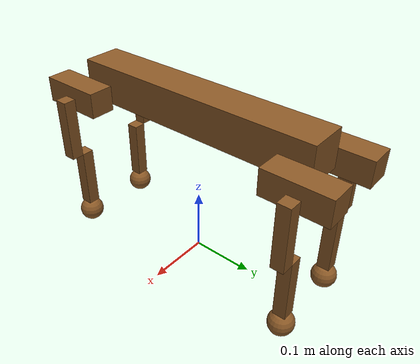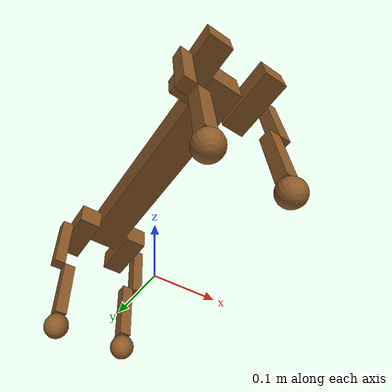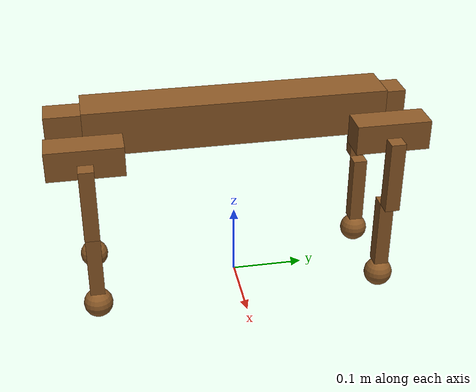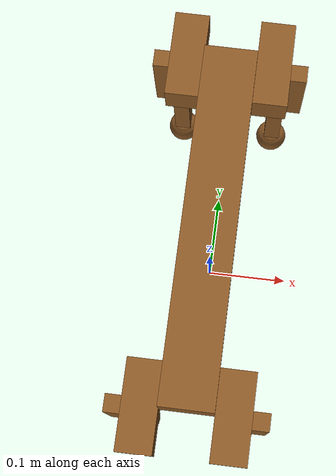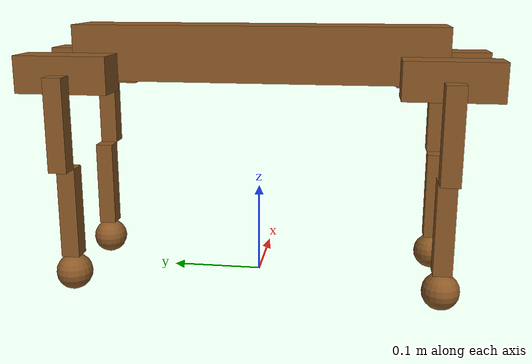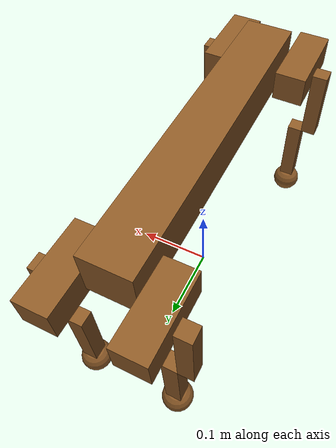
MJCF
<mujoco model="dog">
  <compiler angle="degree"/>
  <option timestep="0.001" gravity="0 0 -9.81"/>

  <default>
    <geom type="box" size="0.05 0.05 0.05" density="700" rgba="0.55 0.35 0.15 1"/>
    <joint limited="true" range="-90 90" damping="2.5" stiffness="0.5"/>
    <motor ctrllimited="true" ctrlrange="-20 20"/>
  </default>

  <worldbody>
    <!-- Torso 6x6x40 cm laid down: long axis Y (0.03 0.20 0.03); lowered for stability -->
    <body name="torso" pos="0 0 0.25">
      <freejoint name="root_free"/>
      <inertial pos="0 0 -0.03" mass="3.0" diaginertia="0.1 0.15 0.1"/>
      <geom name="torso_geom" type="box" size="0.03 0.20 0.03" pos="0 0 0" rgba="0.55 0.35 0.15 1"/>

      <!-- Hip: left-right swing (axis Y); Knee: front-back bend (axis X) -->
      <body name="leg_fl" pos="0.05 0.20 0">
        <joint name="j_fl_hip" type="hinge" axis="0 1 0" pos="0 0 0"/>
        <inertial pos="0 0 -0.02" mass="0.5" diaginertia="0.002 0.003 0.002"/>
        <geom name="leg_fl_upper_geom" type="box" size="0.02 0.05 0.02" pos="0 0 -0.02" rgba="0.55 0.35 0.15 1"/>
        <body name="leg_fl_lower" pos="0.03 0 -0.02">
          <joint name="j_fl_knee" type="hinge" axis="1 0 0" pos="0 0 0"/>
          <inertial pos="0 0 -0.05" mass="0.35" diaginertia="0.003 0.003 0.001"/>
          <geom name="leg_fl_lower_geom" type="box" size="0.01 0.01 0.05" pos="0 0 -0.05" rgba="0.55 0.35 0.15 1"/>
          <!-- Ankle: 3rd segment 2x2x10 + sphere foot -->
          <body name="leg_fl_ankle" pos="-0.02 0 -0.10">
            <joint name="j_fl_ankle" type="hinge" axis="1 0 0" pos="0 0 0"/>
            <inertial pos="0 0 -0.06" mass="0.25" diaginertia="0.002 0.002 0.0005"/>
            <geom name="leg_fl_ankle_geom" type="box" size="0.01 0.01 0.05" pos="0 0 -0.05" rgba="0.55 0.35 0.15 1"/>
            <geom name="leg_fl_foot" type="sphere" size="0.02" pos="0 0 -0.12" rgba="0.55 0.35 0.15 1"/>
          </body>
        </body>
      </body>
      <body name="leg_fr" pos="-0.05 0.20 0">
        <joint name="j_fr_hip" type="hinge" axis="0 1 0" pos="0 0 0"/>
        <inertial pos="0 0 -0.02" mass="0.5" diaginertia="0.002 0.003 0.002"/>
        <geom name="leg_fr_upper_geom" type="box" size="0.02 0.05 0.02" pos="0 0 -0.02" rgba="0.55 0.35 0.15 1"/>
        <body name="leg_fr_lower" pos="-0.03 0 -0.02">
          <joint name="j_fr_knee" type="hinge" axis="1 0 0" pos="0 0 0"/>
          <inertial pos="0 0 -0.05" mass="0.35" diaginertia="0.003 0.003 0.001"/>
          <geom name="leg_fr_lower_geom" type="box" size="0.01 0.01 0.05" pos="0 0 -0.05" rgba="0.55 0.35 0.15 1"/>
          <body name="leg_fr_ankle" pos="0.02 0 -0.10">
            <joint name="j_fr_ankle" type="hinge" axis="1 0 0" pos="0 0 0"/>
            <inertial pos="0 0 -0.06" mass="0.25" diaginertia="0.002 0.002 0.0005"/>
            <geom name="leg_fr_ankle_geom" type="box" size="0.01 0.01 0.05" pos="0 0 -0.05" rgba="0.55 0.35 0.15 1"/>
            <geom name="leg_fr_foot" type="sphere" size="0.02" pos="0 0 -0.12" rgba="0.55 0.35 0.15 1"/>
          </body>
        </body>
      </body>
      <body name="leg_rl" pos="-0.05 -0.20 0">
        <joint name="j_rl_hip" type="hinge" axis="0 1 0" pos="0 0 0"/>
        <inertial pos="0 0 -0.02" mass="0.5" diaginertia="0.002 0.003 0.002"/>
        <geom name="leg_rl_upper_geom" type="box" size="0.02 0.05 0.02" pos="0 0 -0.02" rgba="0.55 0.35 0.15 1"/>
        <body name="leg_rl_lower" pos="-0.03 0 -0.02">
          <joint name="j_rl_knee" type="hinge" axis="1 0 0" pos="0 0 0"/>
          <inertial pos="0 0 -0.05" mass="0.35" diaginertia="0.003 0.003 0.001"/>
          <geom name="leg_rl_lower_geom" type="box" size="0.01 0.01 0.05" pos="0 0 -0.05" rgba="0.55 0.35 0.15 1"/>
          <body name="leg_rl_ankle" pos="0.02 0 -0.10">
            <joint name="j_rl_ankle" type="hinge" axis="1 0 0" pos="0 0 0"/>
            <inertial pos="0 0 -0.06" mass="0.25" diaginertia="0.002 0.002 0.0005"/>
            <geom name="leg_rl_ankle_geom" type="box" size="0.01 0.01 0.05" pos="0 0 -0.05" rgba="0.55 0.35 0.15 1"/>
            <geom name="leg_rl_foot" type="sphere" size="0.02" pos="0 0 -0.12" rgba="0.55 0.35 0.15 1"/>
          </body>
        </body>
      </body>
      <body name="leg_rr" pos="0.05 -0.20 0">
        <joint name="j_rr_hip" type="hinge" axis="0 1 0" pos="0 0 0"/>
        <inertial pos="0 0 -0.02" mass="0.5" diaginertia="0.002 0.003 0.002"/>
        <geom name="leg_rr_upper_geom" type="box" size="0.02 0.05 0.02" pos="0 0 -0.02" rgba="0.55 0.35 0.15 1"/>
        <body name="leg_rr_lower" pos="0.03 0 -0.02">
          <joint name="j_rr_knee" type="hinge" axis="1 0 0" pos="0 0 0"/>
          <inertial pos="0 0 -0.05" mass="0.35" diaginertia="0.003 0.003 0.001"/>
          <geom name="leg_rr_lower_geom" type="box" size="0.01 0.01 0.05" pos="0 0 -0.05" rgba="0.55 0.35 0.15 1"/>
          <body name="leg_rr_ankle" pos="-0.02 0 -0.10">
            <joint name="j_rr_ankle" type="hinge" axis="1 0 0" pos="0 0 0"/>
            <inertial pos="0 0 -0.06" mass="0.25" diaginertia="0.002 0.002 0.0005"/>
            <geom name="leg_rr_ankle_geom" type="box" size="0.01 0.01 0.05" pos="0 0 -0.05" rgba="0.55 0.35 0.15 1"/>
            <geom name="leg_rr_foot" type="sphere" size="0.02" pos="0 0 -0.12" rgba="0.55 0.35 0.15 1"/>
          </body>
        </body>
      </body>
    </body>
  </worldbody>

  <actuator>
    <motor name="m_fl_hip" joint="j_fl_hip"/>
    <motor name="m_fl_knee" joint="j_fl_knee"/>
    <motor name="m_fl_ankle" joint="j_fl_ankle"/>
    <motor name="m_fr_hip" joint="j_fr_hip"/>
    <motor name="m_fr_knee" joint="j_fr_knee"/>
    <motor name="m_fr_ankle" joint="j_fr_ankle"/>
    <motor name="m_rl_hip" joint="j_rl_hip"/>
    <motor name="m_rl_knee" joint="j_rl_knee"/>
    <motor name="m_rl_ankle" joint="j_rl_ankle"/>
    <motor name="m_rr_hip" joint="j_rr_hip"/>
    <motor name="m_rr_knee" joint="j_rr_knee"/>
    <motor name="m_rr_ankle" joint="j_rr_ankle"/>
  </actuator>
</mujoco>
